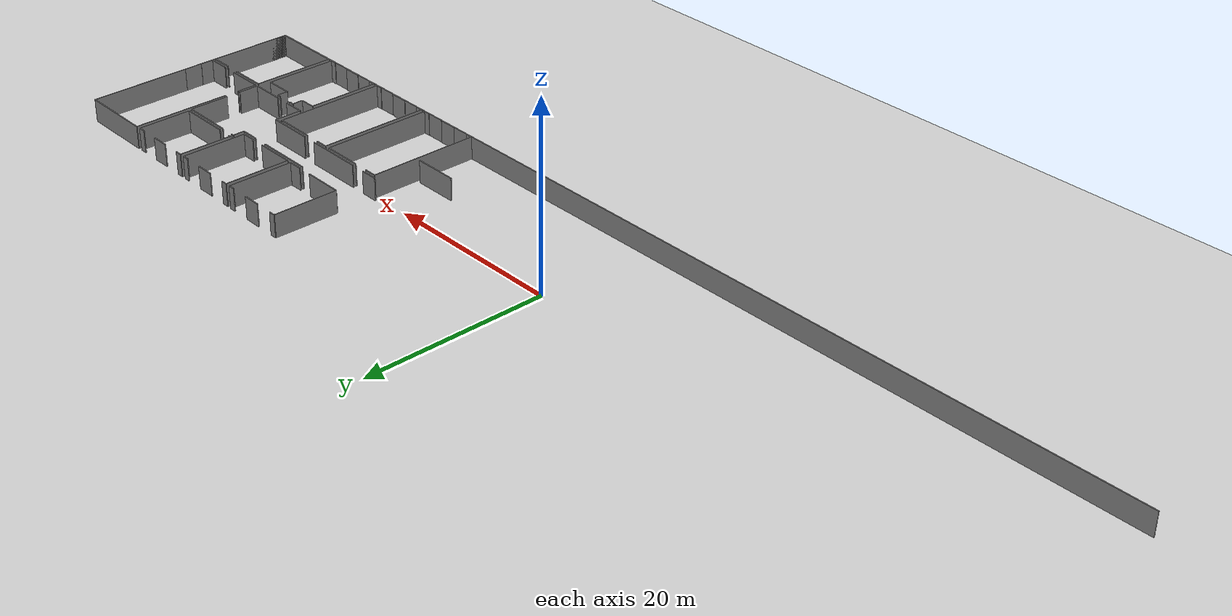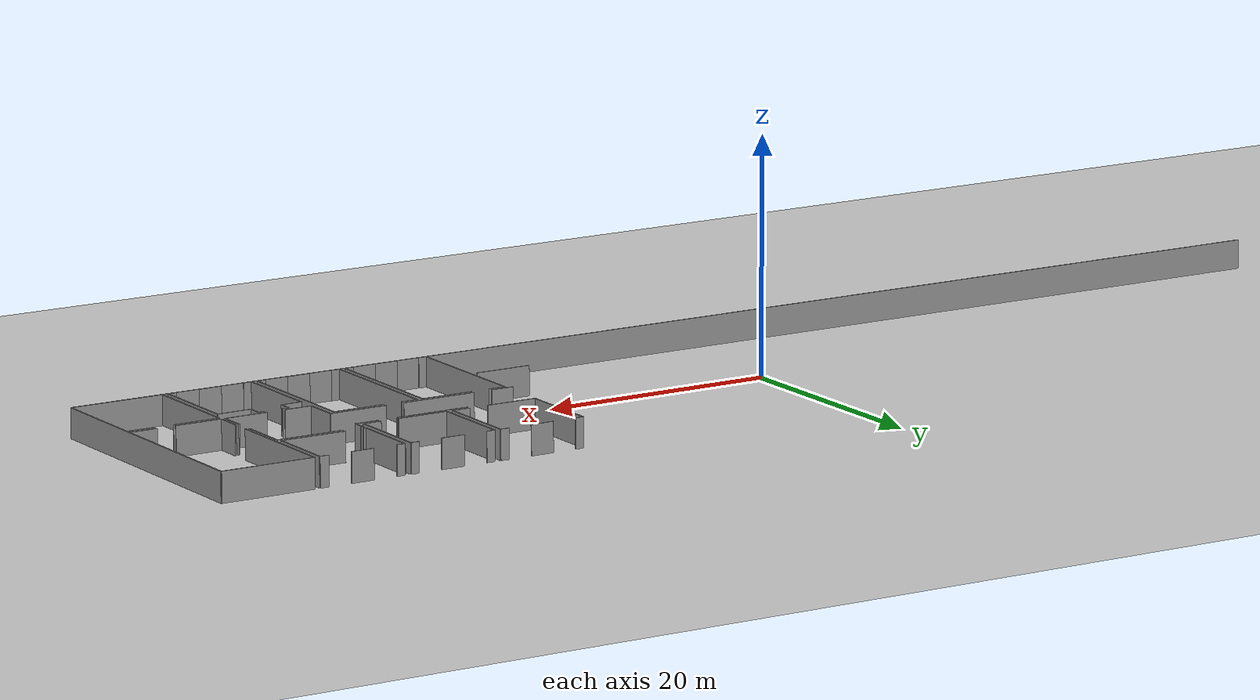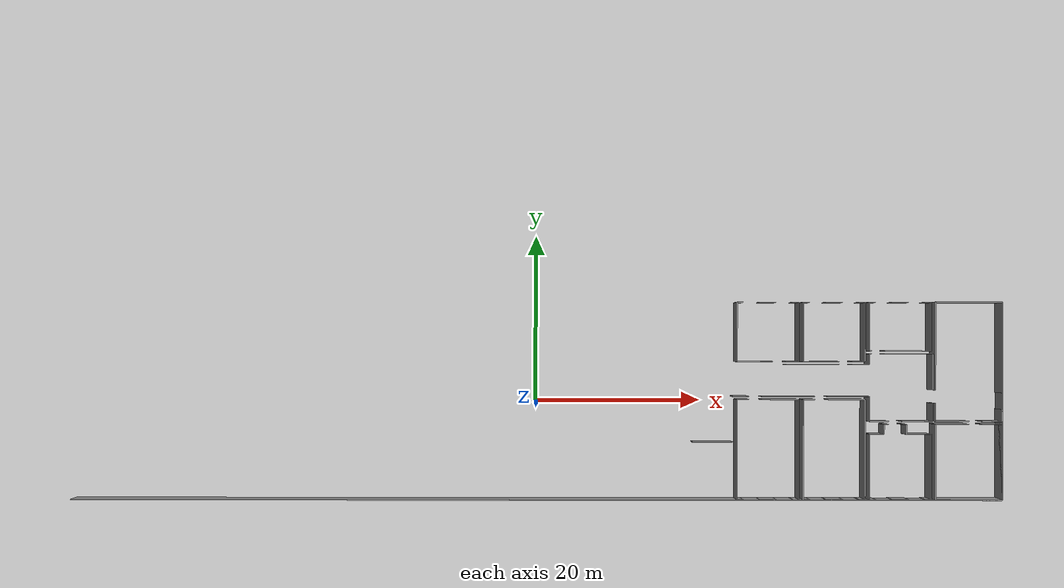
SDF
<sdf version="1.6">
 <world name="default">
  <model name="ground_plane">
   <static>1</static>
   <link name="link">
    <collision name="collision">
     <geometry><plane><normal>0 0 1</normal><size>100 100</size></plane></geometry>
     <surface><friction><ode><mu>100</mu><mu2>50</mu2></ode></friction></surface>
    </collision>
    <visual name="visual">
     <cast_shadows>0</cast_shadows>
     <geometry><plane><normal>0 0 1</normal><size>100 100</size></plane></geometry>
     <material>
      <script><uri>file://media/materials/scripts/gazebo.material</uri><name>Gazebo/Grey</name></script>
     </material>
    </visual>
   </link>
  </model>
  <model name="0510034693_Layout1">
   <static>1</static>
   <link name="Wall_132">
    <collision name="Wall_132_Collision">
     <geometry><box><size>7.16495975803 0.1 2.5</size></box></geometry>
     <pose>3.58247987901 0 1.25 0 0 0</pose>
    </collision>
    <visual name="Wall_132_Visual">
     <pose>3.58247987901 0 1.25 0 0 0</pose>
     <geometry><box><size>7.16495975803 0.1 2.5</size></box></geometry>
     <material>
      <script><uri>file://media/materials/scripts/gazebo.material</uri><name>Gazebo/Grey</name></script>
      <ambient>1 1 1 1</ambient>
     </material>
    </visual>
    <pose>80.6366965708 -7.19994726521 0 0 0 1.57079632679</pose>
   </link>
   <link name="Wall_133">
    <collision name="Wall_133_Collision">
     <geometry><box><size>0.729666997527 0.1 2.5</size></box></geometry>
     <pose>0.364833498763 0 1.25 0 0 0</pose>
    </collision>
    <visual name="Wall_133_Visual">
     <pose>0.364833498763 0 1.25 0 0 0</pose>
     <geometry><box><size>0.729666997527 0.1 2.5</size></box></geometry>
     <material>
      <script><uri>file://media/materials/scripts/gazebo.material</uri><name>Gazebo/Grey</name></script>
      <ambient>1 1 1 1</ambient>
     </material>
    </visual>
    <pose>80.6366965708 -0.0349875071781 0 0 0 0.0</pose>
   </link>
   <link name="Wall_134">
    <collision name="Wall_134_Collision">
     <geometry><box><size>1.98731576098 0.1 2.5</size></box></geometry>
     <pose>0.993657880492 0 1.25 0 0 0</pose>
    </collision>
    <visual name="Wall_134_Visual">
     <pose>0.993657880492 0 1.25 0 0 0</pose>
     <geometry><box><size>1.98731576098 0.1 2.5</size></box></geometry>
     <material>
      <script><uri>file://media/materials/scripts/gazebo.material</uri><name>Gazebo/Grey</name></script>
      <ambient>1 1 1 1</ambient>
     </material>
    </visual>
    <pose>83.3773846331 -0.0349875071781 0 0 0 0.0</pose>
   </link>
   <link name="Wall_135">
    <collision name="Wall_135_Collision">
     <geometry><box><size>0.743484527536 0.1 2.5</size></box></geometry>
     <pose>0.371742263768 0 1.25 0 0 0</pose>
    </collision>
    <visual name="Wall_135_Visual">
     <pose>0.371742263768 0 1.25 0 0 0</pose>
     <geometry><box><size>0.743484527536 0.1 2.5</size></box></geometry>
     <material>
      <script><uri>file://media/materials/scripts/gazebo.material</uri><name>Gazebo/Grey</name></script>
      <ambient>1 1 1 1</ambient>
     </material>
    </visual>
    <pose>87.3757214589 -0.0349875071781 0 0 0 0.0</pose>
   </link>
   <link name="Wall_136">
    <collision name="Wall_136_Collision">
     <geometry><box><size>7.17180513987 0.1 2.5</size></box></geometry>
     <pose>3.58590256993 0 1.25 0 0 0</pose>
    </collision>
    <visual name="Wall_136_Visual">
     <pose>3.58590256993 0 1.25 0 0 0</pose>
     <geometry><box><size>7.17180513987 0.1 2.5</size></box></geometry>
     <material>
      <script><uri>file://media/materials/scripts/gazebo.material</uri><name>Gazebo/Grey</name></script>
      <ambient>1 1 1 1</ambient>
     </material>
    </visual>
    <pose>88.1192059864 -0.0349875071781 0 0 0 -1.57079632679</pose>
   </link>
   <link name="Wall_137">
    <collision name="Wall_137_Collision">
     <geometry><box><size>1.53488672795 0.1 2.5</size></box></geometry>
     <pose>0.767443363973 0 1.25 0 0 0</pose>
    </collision>
    <visual name="Wall_137_Visual">
     <pose>0.767443363973 0 1.25 0 0 0</pose>
     <geometry><box><size>1.53488672795 0.1 2.5</size></box></geometry>
     <material>
      <script><uri>file://media/materials/scripts/gazebo.material</uri><name>Gazebo/Grey</name></script>
      <ambient>1 1 1 1</ambient>
     </material>
    </visual>
    <pose>88.1192059864 -7.20679264705 0 0 0 3.14159265359</pose>
   </link>
   <link name="Wall_138">
    <collision name="Wall_138_Collision">
     <geometry><box><size>4.34720315647 0.1 2.5</size></box></geometry>
     <pose>2.17360157824 0 1.25 0 0 0</pose>
    </collision>
    <visual name="Wall_138_Visual">
     <pose>2.17360157824 0 1.25 0 0 0</pose>
     <geometry><box><size>4.34720315647 0.1 2.5</size></box></geometry>
     <material>
      <script><uri>file://media/materials/scripts/gazebo.material</uri><name>Gazebo/Grey</name></script>
      <ambient>1 1 1 1</ambient>
     </material>
    </visual>
    <pose>84.9838943377 -7.20679264705 0 0 0 3.14001798951</pose>
   </link>
   <link name="Wall_139">
    <collision name="Wall_139_Collision">
     <geometry><box><size>7.17763639106 0.1 2.5</size></box></geometry>
     <pose>3.58881819553 0 1.25 0 0 0</pose>
    </collision>
    <visual name="Wall_139_Visual">
     <pose>3.58881819553 0 1.25 0 0 0</pose>
     <geometry><box><size>7.17763639106 0.1 2.5</size></box></geometry>
     <material>
      <script><uri>file://media/materials/scripts/gazebo.material</uri><name>Gazebo/Grey</name></script>
      <ambient>1 1 1 1</ambient>
     </material>
    </visual>
    <pose>88.6427509308 -7.22137077504 0 0 0 1.57079632679</pose>
   </link>
   <link name="Wall_140">
    <collision name="Wall_140_Collision">
     <geometry><box><size>0.73068112817 0.1 2.5</size></box></geometry>
     <pose>0.365340564085 0 1.25 0 0 0</pose>
    </collision>
    <visual name="Wall_140_Visual">
     <pose>0.365340564085 0 1.25 0 0 0</pose>
     <geometry><box><size>0.73068112817 0.1 2.5</size></box></geometry>
     <material>
      <script><uri>file://media/materials/scripts/gazebo.material</uri><name>Gazebo/Grey</name></script>
      <ambient>1 1 1 1</ambient>
     </material>
    </visual>
    <pose>88.6427509308 -0.0437343839727 0 0 0 0.0</pose>
   </link>
   <link name="Wall_141">
    <collision name="Wall_141_Collision">
     <geometry><box><size>2.02306386614 0.1 2.5</size></box></geometry>
     <pose>1.01153193307 0 1.25 0 0 0</pose>
    </collision>
    <visual name="Wall_141_Visual">
     <pose>1.01153193307 0 1.25 0 0 0</pose>
     <geometry><box><size>2.02306386614 0.1 2.5</size></box></geometry>
     <material>
      <script><uri>file://media/materials/scripts/gazebo.material</uri><name>Gazebo/Grey</name></script>
      <ambient>1 1 1 1</ambient>
     </material>
    </visual>
    <pose>91.3650578752 -0.0437343839727 0 0 0 0.0</pose>
   </link>
   <link name="Wall_142">
    <collision name="Wall_142_Collision">
     <geometry><box><size>0.724723110643 0.1 2.5</size></box></geometry>
     <pose>0.362361555321 0 1.25 0 0 0</pose>
    </collision>
    <visual name="Wall_142_Visual">
     <pose>0.362361555321 0 1.25 0 0 0</pose>
     <geometry><box><size>0.724723110643 0.1 2.5</size></box></geometry>
     <material>
      <script><uri>file://media/materials/scripts/gazebo.material</uri><name>Gazebo/Grey</name></script>
      <ambient>1 1 1 1</ambient>
     </material>
    </visual>
    <pose>95.3924241906 -0.0437343839727 0 0 0 0.0</pose>
   </link>
   <link name="Wall_143">
    <collision name="Wall_143_Collision">
     <geometry><box><size>7.15963557215 0.1 2.5</size></box></geometry>
     <pose>3.57981778608 0 1.25 0 0 0</pose>
    </collision>
    <visual name="Wall_143_Visual">
     <pose>3.57981778608 0 1.25 0 0 0</pose>
     <geometry><box><size>7.15963557215 0.1 2.5</size></box></geometry>
     <material>
      <script><uri>file://media/materials/scripts/gazebo.material</uri><name>Gazebo/Grey</name></script>
      <ambient>1 1 1 1</ambient>
     </material>
    </visual>
    <pose>96.1171473012 -0.0437343839727 0 0 0 -1.57079632679</pose>
   </link>
   <link name="Wall_144">
    <collision name="Wall_144_Collision">
     <geometry><box><size>1.5309569717 0.1 2.5</size></box></geometry>
     <pose>0.765478485852 0 1.25 0 0 0</pose>
    </collision>
    <visual name="Wall_144_Visual">
     <pose>0.765478485852 0 1.25 0 0 0</pose>
     <geometry><box><size>1.5309569717 0.1 2.5</size></box></geometry>
     <material>
      <script><uri>file://media/materials/scripts/gazebo.material</uri><name>Gazebo/Grey</name></script>
      <ambient>1 1 1 1</ambient>
     </material>
    </visual>
    <pose>96.1171473012 -7.20336995613 0 0 0 3.14159265359</pose>
   </link>
   <link name="Wall_145">
    <collision name="Wall_145_Collision">
     <geometry><box><size>4.36434834396 0.1 2.5</size></box></geometry>
     <pose>2.18217417198 0 1.25 0 0 0</pose>
    </collision>
    <visual name="Wall_145_Visual">
     <pose>2.18217417198 0 1.25 0 0 0</pose>
     <geometry><box><size>4.36434834396 0.1 2.5</size></box></geometry>
     <material>
      <script><uri>file://media/materials/scripts/gazebo.material</uri><name>Gazebo/Grey</name></script>
      <ambient>1 1 1 1</ambient>
     </material>
    </visual>
    <pose>93.0070621523 -7.20336995613 0 0 0 -3.13746812719</pose>
   </link>
   <link name="Wall_146">
    <collision name="Wall_146_Collision">
     <geometry><box><size>5.88107036419 0.1 2.5</size></box></geometry>
     <pose>2.94053518209 0 1.25 0 0 0</pose>
    </collision>
    <visual name="Wall_146_Visual">
     <pose>2.94053518209 0 1.25 0 0 0</pose>
     <geometry><box><size>5.88107036419 0.1 2.5</size></box></geometry>
     <material>
      <script><uri>file://media/materials/scripts/gazebo.material</uri><name>Gazebo/Grey</name></script>
      <ambient>1 1 1 1</ambient>
     </material>
    </visual>
    <pose>96.6455093661 -5.91973409495 0 0 0 1.57079632679</pose>
   </link>
   <link name="Wall_147">
    <collision name="Wall_147_Collision">
     <geometry><box><size>0.73093466083 0.1 2.5</size></box></geometry>
     <pose>0.365467330415 0 1.25 0 0 0</pose>
    </collision>
    <visual name="Wall_147_Visual">
     <pose>0.365467330415 0 1.25 0 0 0</pose>
     <geometry><box><size>0.73093466083 0.1 2.5</size></box></geometry>
     <material>
      <script><uri>file://media/materials/scripts/gazebo.material</uri><name>Gazebo/Grey</name></script>
      <ambient>1 1 1 1</ambient>
     </material>
    </visual>
    <pose>96.6455093661 -0.0386637307585 0 0 0 0.0</pose>
   </link>
   <link name="Wall_148">
    <collision name="Wall_148_Collision">
     <geometry><box><size>1.97869565052 0.1 2.5</size></box></geometry>
     <pose>0.98934782526 0 1.25 0 0 0</pose>
    </collision>
    <visual name="Wall_148_Visual">
     <pose>0.98934782526 0 1.25 0 0 0</pose>
     <geometry><box><size>1.97869565052 0.1 2.5</size></box></geometry>
     <material>
      <script><uri>file://media/materials/scripts/gazebo.material</uri><name>Gazebo/Grey</name></script>
      <ambient>1 1 1 1</ambient>
     </material>
    </visual>
    <pose>99.3986205288 -0.0386637307585 0 0 0 0.0</pose>
   </link>
   <link name="Wall_149">
    <collision name="Wall_149_Collision">
     <geometry><box><size>0.775556409116 0.1 2.5</size></box></geometry>
     <pose>0.387778204558 0 1.25 0 0 0</pose>
    </collision>
    <visual name="Wall_149_Visual">
     <pose>0.387778204558 0 1.25 0 0 0</pose>
     <geometry><box><size>0.775556409116 0.1 2.5</size></box></geometry>
     <material>
      <script><uri>file://media/materials/scripts/gazebo.material</uri><name>Gazebo/Grey</name></script>
      <ambient>1 1 1 1</ambient>
     </material>
    </visual>
    <pose>103.355885064 -0.0386637307585 0 0 0 0.0</pose>
   </link>
   <link name="Wall_150">
    <collision name="Wall_150_Collision">
     <geometry><box><size>5.8706755251 0.1 2.5</size></box></geometry>
     <pose>2.93533776255 0 1.25 0 0 0</pose>
    </collision>
    <visual name="Wall_150_Visual">
     <pose>2.93533776255 0 1.25 0 0 0</pose>
     <geometry><box><size>5.8706755251 0.1 2.5</size></box></geometry>
     <material>
      <script><uri>file://media/materials/scripts/gazebo.material</uri><name>Gazebo/Grey</name></script>
      <ambient>1 1 1 1</ambient>
     </material>
    </visual>
    <pose>104.131441473 -0.0386637307585 0 0 0 -1.57079632679</pose>
   </link>
   <link name="Wall_151">
    <collision name="Wall_151_Collision">
     <geometry><box><size>5.63108716073 0.1 2.5</size></box></geometry>
     <pose>2.81554358036 0 1.25 0 0 0</pose>
    </collision>
    <visual name="Wall_151_Visual">
     <pose>2.81554358036 0 1.25 0 0 0</pose>
     <geometry><box><size>5.63108716073 0.1 2.5</size></box></geometry>
     <material>
      <script><uri>file://media/materials/scripts/gazebo.material</uri><name>Gazebo/Grey</name></script>
      <ambient>1 1 1 1</ambient>
     </material>
    </visual>
    <pose>104.131441473 -5.90933925586 0 0 0 3.14159265359</pose>
   </link>
   <link name="Wall_152">
    <collision name="Wall_152_Collision">
     <geometry><box><size>0.280473048389 0.1 2.5</size></box></geometry>
     <pose>0.140236524194 0 1.25 0 0 0</pose>
    </collision>
    <visual name="Wall_152_Visual">
     <pose>0.140236524194 0 1.25 0 0 0</pose>
     <geometry><box><size>0.280473048389 0.1 2.5</size></box></geometry>
     <material>
      <script><uri>file://media/materials/scripts/gazebo.material</uri><name>Gazebo/Grey</name></script>
      <ambient>1 1 1 1</ambient>
     </material>
    </visual>
    <pose>96.9257897225 -5.90933925586 0 0 0 -3.10452235287</pose>
   </link>
   <link name="Wall_153">
    <collision name="Wall_153_Collision">
     <geometry><box><size>2.21777694957 0.1 2.5</size></box></geometry>
     <pose>1.10888847479 0 1.25 0 0 0</pose>
    </collision>
    <visual name="Wall_153_Visual">
     <pose>1.10888847479 0 1.25 0 0 0</pose>
     <geometry><box><size>2.21777694957 0.1 2.5</size></box></geometry>
     <material>
      <script><uri>file://media/materials/scripts/gazebo.material</uri><name>Gazebo/Grey</name></script>
      <ambient>1 1 1 1</ambient>
     </material>
    </visual>
    <pose>104.624308965 -14.4402062235 0 0 0 1.57079632679</pose>
   </link>
   <link name="Wall_154">
    <collision name="Wall_154_Collision">
     <geometry><box><size>10.6637104758 0.1 2.5</size></box></geometry>
     <pose>5.33185523792 0 1.25 0 0 0</pose>
    </collision>
    <visual name="Wall_154_Visual">
     <pose>5.33185523792 0 1.25 0 0 0</pose>
     <geometry><box><size>10.6637104758 0.1 2.5</size></box></geometry>
     <material>
      <script><uri>file://media/materials/scripts/gazebo.material</uri><name>Gazebo/Grey</name></script>
      <ambient>1 1 1 1</ambient>
     </material>
    </visual>
    <pose>104.624308965 -10.6637104758 0 0 0 1.57079632679</pose>
   </link>
   <link name="Wall_155">
    <collision name="Wall_155_Collision">
     <geometry><box><size>8.07286021604 0.1 2.5</size></box></geometry>
     <pose>4.03643010802 0 1.25 0 0 0</pose>
    </collision>
    <visual name="Wall_155_Visual">
     <pose>4.03643010802 0 1.25 0 0 0</pose>
     <geometry><box><size>8.07286021604 0.1 2.5</size></box></geometry>
     <material>
      <script><uri>file://media/materials/scripts/gazebo.material</uri><name>Gazebo/Grey</name></script>
      <ambient>1 1 1 1</ambient>
     </material>
    </visual>
    <pose>104.624308965 -0.0 0 0 0 0.0</pose>
   </link>
   <link name="Wall_156">
    <collision name="Wall_156_Collision">
     <geometry><box><size>10.9586957266 0.1 2.5</size></box></geometry>
     <pose>5.47934786329 0 1.25 0 0 0</pose>
    </collision>
    <visual name="Wall_156_Visual">
     <pose>5.47934786329 0 1.25 0 0 0</pose>
     <geometry><box><size>10.9586957266 0.1 2.5</size></box></geometry>
     <material>
      <script><uri>file://media/materials/scripts/gazebo.material</uri><name>Gazebo/Grey</name></script>
      <ambient>1 1 1 1</ambient>
     </material>
    </visual>
    <pose>112.697169181 -0.0 0 0 0 -1.57079632679</pose>
   </link>
   <link name="Wall_157">
    <collision name="Wall_157_Collision">
     <geometry><box><size>1.4587001634 0.1 2.5</size></box></geometry>
     <pose>0.729350081701 0 1.25 0 0 0</pose>
    </collision>
    <visual name="Wall_157_Visual">
     <pose>0.729350081701 0 1.25 0 0 0</pose>
     <geometry><box><size>1.4587001634 0.1 2.5</size></box></geometry>
     <material>
      <script><uri>file://media/materials/scripts/gazebo.material</uri><name>Gazebo/Grey</name></script>
      <ambient>1 1 1 1</ambient>
     </material>
    </visual>
    <pose>112.697169181 -12.9674349974 0 0 0 -1.57079632679</pose>
   </link>
   <link name="Wall_158">
    <collision name="Wall_158_Collision">
     <geometry><box><size>2.41489859327 0.1 2.5</size></box></geometry>
     <pose>1.20744929664 0 1.25 0 0 0</pose>
    </collision>
    <visual name="Wall_158_Visual">
     <pose>1.20744929664 0 1.25 0 0 0</pose>
     <geometry><box><size>2.41489859327 0.1 2.5</size></box></geometry>
     <material>
      <script><uri>file://media/materials/scripts/gazebo.material</uri><name>Gazebo/Grey</name></script>
      <ambient>1 1 1 1</ambient>
     </material>
    </visual>
    <pose>112.697169181 -14.4261351608 0 0 0 3.14159265359</pose>
   </link>
   <link name="Wall_159">
    <collision name="Wall_159_Collision">
     <geometry><box><size>4.05692727251 0.1 2.5</size></box></geometry>
     <pose>2.02846363625 0 1.25 0 0 0</pose>
    </collision>
    <visual name="Wall_159_Visual">
     <pose>2.02846363625 0 1.25 0 0 0</pose>
     <geometry><box><size>4.05692727251 0.1 2.5</size></box></geometry>
     <material>
      <script><uri>file://media/materials/scripts/gazebo.material</uri><name>Gazebo/Grey</name></script>
      <ambient>1 1 1 1</ambient>
     </material>
    </visual>
    <pose>108.681211835 -14.4261351608 0 0 0 -3.13812424266</pose>
   </link>
   <link name="Wall_160">
    <collision name="Wall_160_Collision">
     <geometry><box><size>9.11779507716 0.1 2.5</size></box></geometry>
     <pose>4.55889753858 0 1.25 0 0 0</pose>
    </collision>
    <visual name="Wall_160_Visual">
     <pose>4.55889753858 0 1.25 0 0 0</pose>
     <geometry><box><size>9.11779507716 0.1 2.5</size></box></geometry>
     <material>
      <script><uri>file://media/materials/scripts/gazebo.material</uri><name>Gazebo/Grey</name></script>
      <ambient>1 1 1 1</ambient>
     </material>
    </visual>
    <pose>104.644591578 -23.9106652317 0 0 0 1.57079632679</pose>
   </link>
   <link name="Wall_161">
    <collision name="Wall_161_Collision">
     <geometry><box><size>4.03662025751 0.1 2.5</size></box></geometry>
     <pose>2.01831012876 0 1.25 0 0 0</pose>
    </collision>
    <visual name="Wall_161_Visual">
     <pose>2.01831012876 0 1.25 0 0 0</pose>
     <geometry><box><size>4.03662025751 0.1 2.5</size></box></geometry>
     <material>
      <script><uri>file://media/materials/scripts/gazebo.material</uri><name>Gazebo/Grey</name></script>
      <ambient>1 1 1 1</ambient>
     </material>
    </visual>
    <pose>104.644591578 -14.7928701545 0 0 0 0.0</pose>
   </link>
   <link name="Wall_162">
    <collision name="Wall_162_Collision">
     <geometry><box><size>2.40856027676 0.1 2.5</size></box></geometry>
     <pose>1.20428013838 0 1.25 0 0 0</pose>
    </collision>
    <visual name="Wall_162_Visual">
     <pose>1.20428013838 0 1.25 0 0 0</pose>
     <geometry><box><size>2.40856027676 0.1 2.5</size></box></geometry>
     <material>
      <script><uri>file://media/materials/scripts/gazebo.material</uri><name>Gazebo/Grey</name></script>
      <ambient>1 1 1 1</ambient>
     </material>
    </visual>
    <pose>110.303820864 -14.7928701545 0 0 0 0.0</pose>
   </link>
   <link name="Wall_163">
    <collision name="Wall_163_Collision">
     <geometry><box><size>9.12869698157 0.1 2.5</size></box></geometry>
     <pose>4.56434849078 0 1.25 0 0 0</pose>
    </collision>
    <visual name="Wall_163_Visual">
     <pose>4.56434849078 0 1.25 0 0 0</pose>
     <geometry><box><size>9.12869698157 0.1 2.5</size></box></geometry>
     <material>
      <script><uri>file://media/materials/scripts/gazebo.material</uri><name>Gazebo/Grey</name></script>
      <ambient>1 1 1 1</ambient>
     </material>
    </visual>
    <pose>112.712381141 -14.7928701545 0 0 0 -1.57079632679</pose>
   </link>
   <link name="Wall_164">
    <collision name="Wall_164_Collision">
     <geometry><box><size>8.06779692862 0.1 2.5</size></box></geometry>
     <pose>4.03389846431 0 1.25 0 0 0</pose>
    </collision>
    <visual name="Wall_164_Visual">
     <pose>4.03389846431 0 1.25 0 0 0</pose>
     <geometry><box><size>8.06779692862 0.1 2.5</size></box></geometry>
     <material>
      <script><uri>file://media/materials/scripts/gazebo.material</uri><name>Gazebo/Grey</name></script>
      <ambient>1 1 1 1</ambient>
     </material>
    </visual>
    <pose>112.712381141 -23.9215671361 0 0 0 3.14024136676</pose>
   </link>
   <link name="Wall_165">
    <collision name="Wall_165_Collision">
     <geometry><box><size>7.95129130522 0.1 2.5</size></box></geometry>
     <pose>3.97564565261 0 1.25 0 0 0</pose>
    </collision>
    <visual name="Wall_165_Visual">
     <pose>3.97564565261 0 1.25 0 0 0</pose>
     <geometry><box><size>7.95129130522 0.1 2.5</size></box></geometry>
     <material>
      <script><uri>file://media/materials/scripts/gazebo.material</uri><name>Gazebo/Grey</name></script>
      <ambient>1 1 1 1</ambient>
     </material>
    </visual>
    <pose>96.6462699641 -23.9466668695 0 0 0 1.57079632679</pose>
   </link>
   <link name="Wall_166">
    <collision name="Wall_166_Collision">
     <geometry><box><size>1.77130593406 0.1 2.5</size></box></geometry>
     <pose>0.885652967029 0 1.25 0 0 0</pose>
    </collision>
    <visual name="Wall_166_Visual">
     <pose>0.885652967029 0 1.25 0 0 0</pose>
     <geometry><box><size>1.77130593406 0.1 2.5</size></box></geometry>
     <material>
      <script><uri>file://media/materials/scripts/gazebo.material</uri><name>Gazebo/Grey</name></script>
      <ambient>1 1 1 1</ambient>
     </material>
    </visual>
    <pose>96.6462699641 -15.9953755643 0 0 0 0.0</pose>
   </link>
   <link name="Wall_167">
    <collision name="Wall_167_Collision">
     <geometry><box><size>1.18488488983 0.1 2.5</size></box></geometry>
     <pose>0.592442444917 0 1.25 0 0 0</pose>
    </collision>
    <visual name="Wall_167_Visual">
     <pose>0.592442444917 0 1.25 0 0 0</pose>
     <geometry><box><size>1.18488488983 0.1 2.5</size></box></geometry>
     <material>
      <script><uri>file://media/materials/scripts/gazebo.material</uri><name>Gazebo/Grey</name></script>
      <ambient>1 1 1 1</ambient>
     </material>
    </visual>
    <pose>98.4175758982 -15.9953755643 0 0 0 1.57079632679</pose>
   </link>
   <link name="Wall_168">
    <collision name="Wall_168_Collision">
     <geometry><box><size>0.573490878529 0.1 2.5</size></box></geometry>
     <pose>0.286745439264 0 1.25 0 0 0</pose>
    </collision>
    <visual name="Wall_168_Visual">
     <pose>0.286745439264 0 1.25 0 0 0</pose>
     <geometry><box><size>0.573490878529 0.1 2.5</size></box></geometry>
     <material>
      <script><uri>file://media/materials/scripts/gazebo.material</uri><name>Gazebo/Grey</name></script>
      <ambient>1 1 1 1</ambient>
     </material>
    </visual>
    <pose>98.4175758982 -14.8104906744 0 0 0 0.0</pose>
   </link>
   <link name="Wall_169">
    <collision name="Wall_169_Collision">
     <geometry><box><size>0.469669253967 0.1 2.5</size></box></geometry>
     <pose>0.234834626984 0 1.25 0 0 0</pose>
    </collision>
    <visual name="Wall_169_Visual">
     <pose>0.234834626984 0 1.25 0 0 0</pose>
     <geometry><box><size>0.469669253967 0.1 2.5</size></box></geometry>
     <material>
      <script><uri>file://media/materials/scripts/gazebo.material</uri><name>Gazebo/Grey</name></script>
      <ambient>1 1 1 1</ambient>
     </material>
    </visual>
    <pose>100.676298372 -14.8104906744 0 0 0 0.0</pose>
   </link>
   <link name="Wall_170">
    <collision name="Wall_170_Collision">
     <geometry><box><size>1.18260309589 0.1 2.5</size></box></geometry>
     <pose>0.591301547944 0 1.25 0 0 0</pose>
    </collision>
    <visual name="Wall_170_Visual">
     <pose>0.591301547944 0 1.25 0 0 0</pose>
     <geometry><box><size>1.18260309589 0.1 2.5</size></box></geometry>
     <material>
      <script><uri>file://media/materials/scripts/gazebo.material</uri><name>Gazebo/Grey</name></script>
      <ambient>1 1 1 1</ambient>
     </material>
    </visual>
    <pose>101.145967626 -14.8104906744 0 0 0 -1.57079632679</pose>
   </link>
   <link name="Wall_171">
    <collision name="Wall_171_Collision">
     <geometry><box><size>2.98103702464 0.1 2.5</size></box></geometry>
     <pose>1.49051851232 0 1.25 0 0 0</pose>
    </collision>
    <visual name="Wall_171_Visual">
     <pose>1.49051851232 0 1.25 0 0 0</pose>
     <geometry><box><size>2.98103702464 0.1 2.5</size></box></geometry>
     <material>
      <script><uri>file://media/materials/scripts/gazebo.material</uri><name>Gazebo/Grey</name></script>
      <ambient>1 1 1 1</ambient>
     </material>
    </visual>
    <pose>101.145967626 -15.9930937703 0 0 0 0.0</pose>
   </link>
   <link name="Wall_172">
    <collision name="Wall_172_Collision">
     <geometry><box><size>7.91833205933 0.1 2.5</size></box></geometry>
     <pose>3.95916602967 0 1.25 0 0 0</pose>
    </collision>
    <visual name="Wall_172_Visual">
     <pose>3.95916602967 0 1.25 0 0 0</pose>
     <geometry><box><size>7.91833205933 0.1 2.5</size></box></geometry>
     <material>
      <script><uri>file://media/materials/scripts/gazebo.material</uri><name>Gazebo/Grey</name></script>
      <ambient>1 1 1 1</ambient>
     </material>
    </visual>
    <pose>104.127004651 -15.9930937703 0 0 0 -1.57079632679</pose>
   </link>
   <link name="Wall_173">
    <collision name="Wall_173_Collision">
     <geometry><box><size>0.717750962473 0.1 2.5</size></box></geometry>
     <pose>0.358875481237 0 1.25 0 0 0</pose>
    </collision>
    <visual name="Wall_173_Visual">
     <pose>0.358875481237 0 1.25 0 0 0</pose>
     <geometry><box><size>0.717750962473 0.1 2.5</size></box></geometry>
     <material>
      <script><uri>file://media/materials/scripts/gazebo.material</uri><name>Gazebo/Grey</name></script>
      <ambient>1 1 1 1</ambient>
     </material>
    </visual>
    <pose>104.127004651 -23.9114258297 0 0 0 3.14159265359</pose>
   </link>
   <link name="Wall_174">
    <collision name="Wall_174_Collision">
     <geometry><box><size>1.99796413273 0.1 2.5</size></box></geometry>
     <pose>0.998982066367 0 1.25 0 0 0</pose>
    </collision>
    <visual name="Wall_174_Visual">
     <pose>0.998982066367 0 1.25 0 0 0</pose>
     <geometry><box><size>1.99796413273 0.1 2.5</size></box></geometry>
     <material>
      <script><uri>file://media/materials/scripts/gazebo.material</uri><name>Gazebo/Grey</name></script>
      <ambient>1 1 1 1</ambient>
     </material>
    </visual>
    <pose>101.392401373 -23.9114258297 0 0 0 3.14159265359</pose>
   </link>
   <link name="Wall_175">
    <collision name="Wall_175_Collision">
     <geometry><box><size>0.738494608635 0.1 2.5</size></box></geometry>
     <pose>0.369247304317 0 1.25 0 0 0</pose>
    </collision>
    <visual name="Wall_175_Visual">
     <pose>0.369247304317 0 1.25 0 0 0</pose>
     <geometry><box><size>0.738494608635 0.1 2.5</size></box></geometry>
     <material>
      <script><uri>file://media/materials/scripts/gazebo.material</uri><name>Gazebo/Grey</name></script>
      <ambient>1 1 1 1</ambient>
     </material>
    </visual>
    <pose>97.3839232405 -23.9114258297 0 0 0 -3.09385441915</pose>
   </link>
   <link name="Wall_176">
    <collision name="Wall_176_Collision">
     <geometry><box><size>12.1292560211 0.1 2.5</size></box></geometry>
     <pose>6.06462801054 0 1.25 0 0 0</pose>
    </collision>
    <visual name="Wall_176_Visual">
     <pose>6.06462801054 0 1.25 0 0 0</pose>
     <geometry><box><size>12.1292560211 0.1 2.5</size></box></geometry>
     <material>
      <script><uri>file://media/materials/scripts/gazebo.material</uri><name>Gazebo/Grey</name></script>
      <ambient>1 1 1 1</ambient>
     </material>
    </visual>
    <pose>88.6370464459 -23.9298069476 0 0 0 1.57079632679</pose>
   </link>
   <link name="Wall_177">
    <collision name="Wall_177_Collision">
     <geometry><box><size>1.42650151549 0.1 2.5</size></box></geometry>
     <pose>0.713250757746 0 1.25 0 0 0</pose>
    </collision>
    <visual name="Wall_177_Visual">
     <pose>0.713250757746 0 1.25 0 0 0</pose>
     <geometry><box><size>1.42650151549 0.1 2.5</size></box></geometry>
     <material>
      <script><uri>file://media/materials/scripts/gazebo.material</uri><name>Gazebo/Grey</name></script>
      <ambient>1 1 1 1</ambient>
     </material>
    </visual>
    <pose>88.6370464459 -11.8005509265 0 0 0 0.0</pose>
   </link>
   <link name="Wall_178">
    <collision name="Wall_178_Collision">
     <geometry><box><size>4.4429063463 0.1 2.5</size></box></geometry>
     <pose>2.22145317315 0 1.25 0 0 0</pose>
    </collision>
    <visual name="Wall_178_Visual">
     <pose>2.22145317315 0 1.25 0 0 0</pose>
     <geometry><box><size>4.4429063463 0.1 2.5</size></box></geometry>
     <material>
      <script><uri>file://media/materials/scripts/gazebo.material</uri><name>Gazebo/Grey</name></script>
      <ambient>1 1 1 1</ambient>
     </material>
    </visual>
    <pose>91.67233946 -11.8005509265 0 0 0 0.0</pose>
   </link>
   <link name="Wall_179">
    <collision name="Wall_179_Collision">
     <geometry><box><size>12.11962178 0.1 2.5</size></box></geometry>
     <pose>6.05981088999 0 1.25 0 0 0</pose>
    </collision>
    <visual name="Wall_179_Visual">
     <pose>6.05981088999 0 1.25 0 0 0</pose>
     <geometry><box><size>12.11962178 0.1 2.5</size></box></geometry>
     <material>
      <script><uri>file://media/materials/scripts/gazebo.material</uri><name>Gazebo/Grey</name></script>
      <ambient>1 1 1 1</ambient>
     </material>
    </visual>
    <pose>96.1152458063 -11.8005509265 0 0 0 -1.57079632679</pose>
   </link>
   <link name="Wall_180">
    <collision name="Wall_180_Collision">
     <geometry><box><size>0.720539821741 0.1 2.5</size></box></geometry>
     <pose>0.360269910871 0 1.25 0 0 0</pose>
    </collision>
    <visual name="Wall_180_Visual">
     <pose>0.360269910871 0 1.25 0 0 0</pose>
     <geometry><box><size>0.720539821741 0.1 2.5</size></box></geometry>
     <material>
      <script><uri>file://media/materials/scripts/gazebo.material</uri><name>Gazebo/Grey</name></script>
      <ambient>1 1 1 1</ambient>
     </material>
    </visual>
    <pose>96.1152458063 -23.9201727064 0 0 0 3.14159265359</pose>
   </link>
   <link name="Wall_181">
    <collision name="Wall_181_Collision">
     <geometry><box><size>2.01292255972 0.1 2.5</size></box></geometry>
     <pose>1.00646127986 0 1.25 0 0 0</pose>
    </collision>
    <visual name="Wall_181_Visual">
     <pose>1.00646127986 0 1.25 0 0 0</pose>
     <geometry><box><size>2.01292255972 0.1 2.5</size></box></geometry>
     <material>
      <script><uri>file://media/materials/scripts/gazebo.material</uri><name>Gazebo/Grey</name></script>
      <ambient>1 1 1 1</ambient>
     </material>
    </visual>
    <pose>93.3914176659 -23.9201727064 0 0 0 3.14159265359</pose>
   </link>
   <link name="Wall_182">
    <collision name="Wall_182_Collision">
     <geometry><box><size>0.757363337482 0.1 2.5</size></box></geometry>
     <pose>0.378681668741 0 1.25 0 0 0</pose>
    </collision>
    <visual name="Wall_182_Visual">
     <pose>0.378681668741 0 1.25 0 0 0</pose>
     <geometry><box><size>0.757363337482 0.1 2.5</size></box></geometry>
     <material>
      <script><uri>file://media/materials/scripts/gazebo.material</uri><name>Gazebo/Grey</name></script>
      <ambient>1 1 1 1</ambient>
     </material>
    </visual>
    <pose>89.3943485035 -23.9201727064 0 0 0 -3.1288715454</pose>
   </link>
   <link name="Wall_183">
    <collision name="Wall_183_Collision">
     <geometry><box><size>12.1260868628 0.1 2.5</size></box></geometry>
     <pose>6.06304343141 0 1.25 0 0 0</pose>
    </collision>
    <visual name="Wall_183_Visual">
     <pose>6.06304343141 0 1.25 0 0 0</pose>
     <geometry><box><size>12.1260868628 0.1 2.5</size></box></geometry>
     <material>
      <script><uri>file://media/materials/scripts/gazebo.material</uri><name>Gazebo/Grey</name></script>
      <ambient>1 1 1 1</ambient>
     </material>
    </visual>
    <pose>80.6323865156 -23.9303140129 0 0 0 1.57079632679</pose>
   </link>
   <link name="Wall_184">
    <collision name="Wall_184_Collision">
     <geometry><box><size>1.44906592229 0.1 2.5</size></box></geometry>
     <pose>0.724532961147 0 1.25 0 0 0</pose>
    </collision>
    <visual name="Wall_184_Visual">
     <pose>0.724532961147 0 1.25 0 0 0</pose>
     <geometry><box><size>1.44906592229 0.1 2.5</size></box></geometry>
     <material>
      <script><uri>file://media/materials/scripts/gazebo.material</uri><name>Gazebo/Grey</name></script>
      <ambient>1 1 1 1</ambient>
     </material>
    </visual>
    <pose>80.6323865156 -11.8042271501 0 0 0 0.0</pose>
   </link>
   <link name="Wall_185">
    <collision name="Wall_185_Collision">
     <geometry><box><size>4.47637265752 0.1 2.5</size></box></geometry>
     <pose>2.23818632876 0 1.25 0 0 0</pose>
    </collision>
    <visual name="Wall_185_Visual">
     <pose>2.23818632876 0 1.25 0 0 0</pose>
     <geometry><box><size>4.47637265752 0.1 2.5</size></box></geometry>
     <material>
      <script><uri>file://media/materials/scripts/gazebo.material</uri><name>Gazebo/Grey</name></script>
      <ambient>1 1 1 1</ambient>
     </material>
    </visual>
    <pose>83.6527211027 -11.8042271501 0 0 0 0.0</pose>
   </link>
   <link name="Wall_186">
    <collision name="Wall_186_Collision">
     <geometry><box><size>12.1300166191 0.1 2.5</size></box></geometry>
     <pose>6.06500830953 0 1.25 0 0 0</pose>
    </collision>
    <visual name="Wall_186_Visual">
     <pose>6.06500830953 0 1.25 0 0 0</pose>
     <geometry><box><size>12.1300166191 0.1 2.5</size></box></geometry>
     <material>
      <script><uri>file://media/materials/scripts/gazebo.material</uri><name>Gazebo/Grey</name></script>
      <ambient>1 1 1 1</ambient>
     </material>
    </visual>
    <pose>88.1290937602 -11.8042271501 0 0 0 -1.57079632679</pose>
   </link>
   <link name="Wall_187">
    <collision name="Wall_187_Collision">
     <geometry><box><size>0.744625424509 0.1 2.5</size></box></geometry>
     <pose>0.372312712254 0 1.25 0 0 0</pose>
    </collision>
    <visual name="Wall_187_Visual">
     <pose>0.372312712254 0 1.25 0 0 0</pose>
     <geometry><box><size>0.744625424509 0.1 2.5</size></box></geometry>
     <material>
      <script><uri>file://media/materials/scripts/gazebo.material</uri><name>Gazebo/Grey</name></script>
      <ambient>1 1 1 1</ambient>
     </material>
    </visual>
    <pose>88.1290937602 -23.9342437691 0 0 0 3.14159265359</pose>
   </link>
   <link name="Wall_188">
    <collision name="Wall_188_Collision">
     <geometry><box><size>1.99023138658 0.1 2.5</size></box></geometry>
     <pose>0.995115693291 0 1.25 0 0 0</pose>
    </collision>
    <visual name="Wall_188_Visual">
     <pose>0.995115693291 0 1.25 0 0 0</pose>
     <geometry><box><size>1.99023138658 0.1 2.5</size></box></geometry>
     <material>
      <script><uri>file://media/materials/scripts/gazebo.material</uri><name>Gazebo/Grey</name></script>
      <ambient>1 1 1 1</ambient>
     </material>
    </visual>
    <pose>85.35620705 -23.9342437691 0 0 0 3.14159265359</pose>
   </link>
   <link name="Wall_189">
    <collision name="Wall_189_Collision">
     <geometry><box><size>0.718015249153 0.1 2.5</size></box></geometry>
     <pose>0.359007624577 0 1.25 0 0 0</pose>
    </collision>
    <visual name="Wall_189_Visual">
     <pose>0.359007624577 0 1.25 0 0 0</pose>
     <geometry><box><size>0.718015249153 0.1 2.5</size></box></geometry>
     <material>
      <script><uri>file://media/materials/scripts/gazebo.material</uri><name>Gazebo/Grey</name></script>
      <ambient>1 1 1 1</ambient>
     </material>
    </visual>
    <pose>81.3503910107 -23.9342437691 0 0 0 3.1361195444</pose>
   </link>
   <link name="Wall_236">
    <collision name="Wall_236_Collision">
     <geometry><box><size>6.38762862029 0.1 2.5</size></box></geometry>
     <pose>3.19381431014 0 1.25 0 0 0</pose>
    </collision>
    <visual name="Wall_236_Visual">
     <pose>3.19381431014 0 1.25 0 0 0</pose>
     <geometry><box><size>6.38762862029 0.1 2.5</size></box></geometry>
     <material>
      <script><uri>file://media/materials/scripts/gazebo.material</uri><name>Gazebo/Grey</name></script>
      <ambient>1 1 1 1</ambient>
     </material>
    </visual>
    <pose>86.5915449393 -7.55273796259 0 0 0 0.0</pose>
   </link>
   <link name="Wall_237">
    <collision name="Wall_237_Collision">
     <geometry><box><size>2.04398031065 0.1 2.5</size></box></geometry>
     <pose>1.02199015533 0 1.25 0 0 0</pose>
    </collision>
    <visual name="Wall_237_Visual">
     <pose>1.02199015533 0 1.25 0 0 0</pose>
     <geometry><box><size>2.04398031065 0.1 2.5</size></box></geometry>
     <material>
      <script><uri>file://media/materials/scripts/gazebo.material</uri><name>Gazebo/Grey</name></script>
      <ambient>1 1 1 1</ambient>
     </material>
    </visual>
    <pose>94.5931624777 -7.55273796259 0 0 0 0.0</pose>
   </link>
   <link name="Wall_238">
    <collision name="Wall_238_Collision">
     <geometry><box><size>1.28084700191 0.1 2.5</size></box></geometry>
     <pose>0.640423500956 0 1.25 0 0 0</pose>
    </collision>
    <visual name="Wall_238_Visual">
     <pose>0.640423500956 0 1.25 0 0 0</pose>
     <geometry><box><size>1.28084700191 0.1 2.5</size></box></geometry>
     <material>
      <script><uri>file://media/materials/scripts/gazebo.material</uri><name>Gazebo/Grey</name></script>
      <ambient>1 1 1 1</ambient>
     </material>
    </visual>
    <pose>96.6371427883 -7.55273796259 0 0 0 1.57079632679</pose>
   </link>
   <link name="Wall_239">
    <collision name="Wall_239_Collision">
     <geometry><box><size>0.289914597523 0.1 2.5</size></box></geometry>
     <pose>0.144957298762 0 1.25 0 0 0</pose>
    </collision>
    <visual name="Wall_239_Visual">
     <pose>0.144957298762 0 1.25 0 0 0</pose>
     <geometry><box><size>0.289914597523 0.1 2.5</size></box></geometry>
     <material>
      <script><uri>file://media/materials/scripts/gazebo.material</uri><name>Gazebo/Grey</name></script>
      <ambient>1 1 1 1</ambient>
     </material>
    </visual>
    <pose>96.6371427883 -6.27189096067 0 0 0 0.0</pose>
   </link>
   <link name="Wall_240">
    <collision name="Wall_240_Collision">
     <geometry><box><size>5.80501056597 0.1 2.5</size></box></geometry>
     <pose>2.90250528299 0 1.25 0 0 0</pose>
    </collision>
    <visual name="Wall_240_Visual">
     <pose>2.90250528299 0 1.25 0 0 0</pose>
     <geometry><box><size>5.80501056597 0.1 2.5</size></box></geometry>
     <material>
      <script><uri>file://media/materials/scripts/gazebo.material</uri><name>Gazebo/Grey</name></script>
      <ambient>1 1 1 1</ambient>
     </material>
    </visual>
    <pose>98.5041573018 -6.27189096067 0 0 0 0.0</pose>
   </link>
   <link name="Wall_241">
    <collision name="Wall_241_Collision">
     <geometry><box><size>4.35340931707 0.1 2.5</size></box></geometry>
     <pose>2.17670465854 0 1.25 0 0 0</pose>
    </collision>
    <visual name="Wall_241_Visual">
     <pose>2.17670465854 0 1.25 0 0 0</pose>
     <geometry><box><size>4.35340931707 0.1 2.5</size></box></geometry>
     <material>
      <script><uri>file://media/materials/scripts/gazebo.material</uri><name>Gazebo/Grey</name></script>
      <ambient>1 1 1 1</ambient>
     </material>
    </visual>
    <pose>104.309167868 -6.27189096067 0 0 0 -1.57079632679</pose>
   </link>
   <link name="Wall_242">
    <collision name="Wall_242_Collision">
     <geometry><box><size>2.20801594213 0.1 2.5</size></box></geometry>
     <pose>1.10400797107 0 1.25 0 0 0</pose>
    </collision>
    <visual name="Wall_242_Visual">
     <pose>1.10400797107 0 1.25 0 0 0</pose>
     <geometry><box><size>2.20801594213 0.1 2.5</size></box></geometry>
     <material>
      <script><uri>file://media/materials/scripts/gazebo.material</uri><name>Gazebo/Grey</name></script>
      <ambient>1 1 1 1</ambient>
     </material>
    </visual>
    <pose>104.309167868 -12.2264857965 0 0 0 -1.57079632679</pose>
   </link>
   <link name="Wall_243">
    <collision name="Wall_243_Collision">
     <geometry><box><size>3.7208453286 0.1 2.5</size></box></geometry>
     <pose>1.8604226643 0 1.25 0 0 0</pose>
    </collision>
    <visual name="Wall_243_Visual">
     <pose>1.8604226643 0 1.25 0 0 0</pose>
     <geometry><box><size>3.7208453286 0.1 2.5</size></box></geometry>
     <material>
      <script><uri>file://media/materials/scripts/gazebo.material</uri><name>Gazebo/Grey</name></script>
      <ambient>1 1 1 1</ambient>
     </material>
    </visual>
    <pose>104.309167868 -14.4345017386 0 0 0 3.14159265359</pose>
   </link>
   <link name="Wall_244">
    <collision name="Wall_244_Collision">
     <geometry><box><size>2.34796597085 0.1 2.5</size></box></geometry>
     <pose>1.17398298542 0 1.25 0 0 0</pose>
    </collision>
    <visual name="Wall_244_Visual">
     <pose>1.17398298542 0 1.25 0 0 0</pose>
     <geometry><box><size>2.34796597085 0.1 2.5</size></box></geometry>
     <material>
      <script><uri>file://media/materials/scripts/gazebo.material</uri><name>Gazebo/Grey</name></script>
      <ambient>1 1 1 1</ambient>
     </material>
    </visual>
    <pose>98.9901794124 -14.4345017386 0 0 0 3.14159265359</pose>
   </link>
   <link name="Wall_245">
    <collision name="Wall_245_Collision">
     <geometry><box><size>3.00157317016 0.1 2.5</size></box></geometry>
     <pose>1.50078658508 0 1.25 0 0 0</pose>
    </collision>
    <visual name="Wall_245_Visual">
     <pose>1.50078658508 0 1.25 0 0 0</pose>
     <geometry><box><size>3.00157317016 0.1 2.5</size></box></geometry>
     <material>
      <script><uri>file://media/materials/scripts/gazebo.material</uri><name>Gazebo/Grey</name></script>
      <ambient>1 1 1 1</ambient>
     </material>
    </visual>
    <pose>96.6422134415 -14.4345017386 0 0 0 1.57079632679</pose>
   </link>
   <link name="Wall_246">
    <collision name="Wall_246_Collision">
     <geometry><box><size>4.97139517756 0.1 2.5</size></box></geometry>
     <pose>2.48569758878 0 1.25 0 0 0</pose>
    </collision>
    <visual name="Wall_246_Visual">
     <pose>2.48569758878 0 1.25 0 0 0</pose>
     <geometry><box><size>4.97139517756 0.1 2.5</size></box></geometry>
     <material>
      <script><uri>file://media/materials/scripts/gazebo.material</uri><name>Gazebo/Grey</name></script>
      <ambient>1 1 1 1</ambient>
     </material>
    </visual>
    <pose>96.6422134415 -11.4329285684 0 0 0 3.14159265359</pose>
   </link>
   <link name="Wall_247">
    <collision name="Wall_247_Collision">
     <geometry><box><size>6.40169968296 0.1 2.5</size></box></geometry>
     <pose>3.20084984148 0 1.25 0 0 0</pose>
    </collision>
    <visual name="Wall_247_Visual">
     <pose>3.20084984148 0 1.25 0 0 0</pose>
     <geometry><box><size>6.40169968296 0.1 2.5</size></box></geometry>
     <material>
      <script><uri>file://media/materials/scripts/gazebo.material</uri><name>Gazebo/Grey</name></script>
      <ambient>1 1 1 1</ambient>
     </material>
    </visual>
    <pose>90.0719145392 -11.4329285684 0 0 0 3.14159265359</pose>
   </link>
   <link name="Wall_248">
    <collision name="Wall_248_Collision">
     <geometry><box><size>1.93369360324 0.1 2.5</size></box></geometry>
     <pose>0.966846801622 0 1.25 0 0 0</pose>
    </collision>
    <visual name="Wall_248_Visual">
     <pose>0.966846801622 0 1.25 0 0 0</pose>
     <geometry><box><size>1.93369360324 0.1 2.5</size></box></geometry>
     <material>
      <script><uri>file://media/materials/scripts/gazebo.material</uri><name>Gazebo/Grey</name></script>
      <ambient>1 1 1 1</ambient>
     </material>
    </visual>
    <pose>82.0593950964 -11.4329285684 0 0 0 3.14159265359</pose>
   </link>
   <link name="Wall_250">
    <collision name="Wall_250_Collision">
     <geometry><box><size>4.86262966611 0.1 2.5</size></box></geometry>
     <pose>2.43131483306 0 1.25 0 0 0</pose>
    </collision>
    <visual name="Wall_250_Visual">
     <pose>2.43131483306 0 1.25 0 0 0</pose>
     <geometry><box><size>4.86262966611 0.1 2.5</size></box></geometry>
     <material>
      <script><uri>file://media/materials/scripts/gazebo.material</uri><name>Gazebo/Grey</name></script>
      <ambient>1 1 1 1</ambient>
     </material>
    </visual>
    <pose>80.1257014932 -16.9555037504 0 0 0 3.14159265359</pose>
   </link>
   <link name="Wall_290">
    <collision name="Wall_290_Collision">
     <geometry><box><size>23.9682171457 0.1 2.5</size></box></geometry>
     <pose>11.9841085728 0 1.25 0 0 0</pose>
    </collision>
    <visual name="Wall_290_Visual">
     <pose>11.9841085728 0 1.25 0 0 0</pose>
     <geometry><box><size>23.9682171457 0.1 2.5</size></box></geometry>
     <material>
      <script><uri>file://media/materials/scripts/gazebo.material</uri><name>Gazebo/Grey</name></script>
      <ambient>1 1 1 1</ambient>
     </material>
    </visual>
    <pose>112.712381141 -23.9682171457 0 0 0 1.57079632679</pose>
   </link>
   <link name="Wall_291">
    <collision name="Wall_291_Collision">
     <geometry><box><size>112.712381141 0.1 2.5</size></box></geometry>
     <pose>56.3561905704 0 1.25 0 0 0</pose>
    </collision>
    <visual name="Wall_291_Visual">
     <pose>56.3561905704 0 1.25 0 0 0</pose>
     <geometry><box><size>112.712381141 0.1 2.5</size></box></geometry>
     <material>
      <script><uri>file://media/materials/scripts/gazebo.material</uri><name>Gazebo/Grey</name></script>
      <ambient>1 1 1 1</ambient>
     </material>
    </visual>
    <pose>112.712381141 -23.9682171457 0 0 0 3.14159265359</pose>
   </link>
   <pose>-56.35 11.9682171457 0 0 0 0</pose>
  </model>
 </world>
</sdf>
